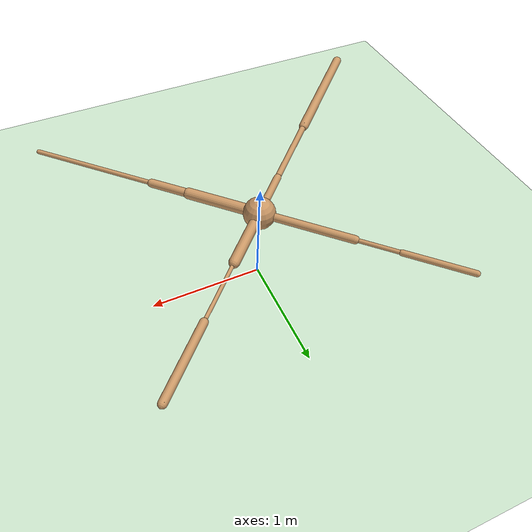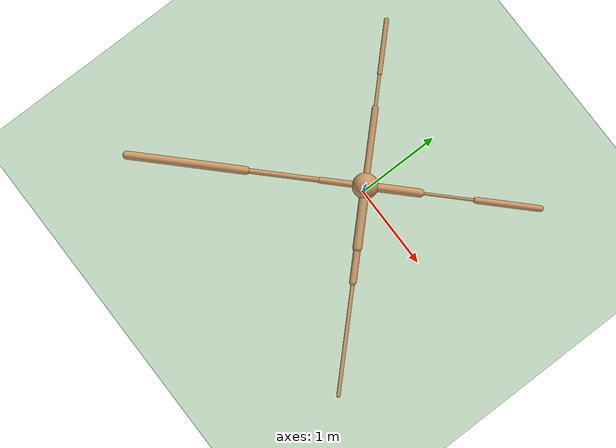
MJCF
<mujoco model="ant">
  <compiler angle="degree" coordinate="local" inertiafromgeom="true" />
  <option integrator="RK4" timestep="0.01" />
  <custom>
    <numeric data="0.0 0.0 0.55 1.0 0.0 0.0 0.0 0.0 1.0 0.0 -1.0 0.0 -1.0 0.0 1.0" name="init_qpos" />
  </custom>
  <default>
    <joint armature="1" damping="1" limited="true" />
    <geom conaffinity="0" condim="3" density="5.0" friction="1 0.5 0.5" margin="0.01" rgba="0.8 0.6 0.4 1" />
  </default>
  <asset>
    <texture builtin="gradient" height="100" rgb1="1 1 1" rgb2="0 0 0" type="skybox" width="100" />
    <texture builtin="flat" height="1278" mark="cross" markrgb="1 1 1" name="texgeom" random="0.01" rgb1="0.8 0.6 0.4" rgb2="0.8 0.6 0.4" type="cube" width="127" />
    <texture builtin="checker" height="100" name="texplane" rgb1="0 0 0" rgb2="0.8 0.8 0.8" type="2d" width="100" />
    <material name="MatPlane" reflectance="0.5" shininess="1" specular="1" texrepeat="60 60" texture="texplane" />
    <material name="geom" texture="texgeom" texuniform="true" />
  </asset>
  <worldbody>
    <light cutoff="100" diffuse="1 1 1" dir="-0 0 -1.3" directional="true" exponent="1" pos="0 0 1.3" specular=".1 .1 .1" />
    <geom conaffinity="1" condim="3" material="MatPlane" name="floor" pos="0 0 0" rgba="0.8 0.9 0.8 1" size="40 40 40" type="plane" />
    <body name="torso" pos="0 0 0.75">
      <camera name="track" mode="trackcom" pos="0 -11 5" xyaxes="1 0 0 0 0.5 1" />
      <geom name="torso_geom" pos="0 0 0" size="0.1392466425895691" type="sphere" />
      <joint armature="0" damping="0" limited="false" margin="0.01" name="root" pos="0 0 0" type="free" />
      <body name="front_left_leg" pos="0 0 0">
        <geom fromto="0 0 0 0.40372365713119507 0.40372365713119507 0" name="aux_1_geom" size="0.04571430757641792" type="capsule" />
        <body name="aux_1" pos="0.40372365713119507 0.40372365713119507 0">
          <joint axis="0 0 1" name="hip_1" pos="0.0 0.0 0.0" range="-30 30" type="hinge" />
          <geom fromto="0 0 0 0.41528844833374023 0.41528844833374023 0" name="left_leg_geom" size="0.015671735629439354" type="capsule" />
          <body name="left_leg_geom_aux" pos="0.41528844833374023 0.41528844833374023 0">
            <joint axis="-1 1 0" name="ankle_1" pos="0.0 0.0 0.0" range="30 70" type="hinge" />
            <geom fromto="0 0 0 0.46956467628479004 0.46956467628479004 0" name="left_ankle_geom" size="0.03448114171624184" type="capsule" />
          </body>
        </body>
      </body>
      <body name="front_right_leg" pos="0 0 0">
        <geom fromto="0 0 0 -0.5752936005592346 0.5752936005592346 0" name="aux_2_geom" size="0.03560496121644974" type="capsule" />
        <body name="aux_2" pos="-0.5752936005592346 0.5752936005592346 0">
          <joint axis="0 0 1" name="hip_2" pos="0.0 0.0 0.0" range="-30 30" type="hinge" />
          <geom fromto="0 0 0 -0.2654039263725281 0.2654039263725281 0" name="right_leg_geom" size="0.01838965341448784" type="capsule" />
          <body name="right_leg_geom_aux" pos="-0.2654039263725281 0.2654039263725281 0">
            <joint axis="1 1 0" name="ankle_2" pos="0.0 0.0 0.0" range="-70 -30" type="hinge" />
            <geom fromto="0 0 0 -0.4044218063354492 0.4044218063354492 0" name="right_ankle_geom" size="0.025819428265094757" type="capsule" />
          </body>
        </body>
      </body>
      <body name="back_leg" pos="0 0 0">
        <geom fromto="0 0 0 -0.331643670797348 -0.331643670797348 0" name="aux_3_geom" size="0.03362749516963959" type="capsule" />
        <body name="aux_3" pos="-0.331643670797348 -0.331643670797348 0">
          <joint axis="0 0 1" name="hip_3" pos="0.0 0.0 0.0" range="-30 30" type="hinge" />
          <geom fromto="0 0 0 -0.5522744655609131 -0.5522744655609131 0" name="back_leg_geom" size="0.027373243123292923" type="capsule" />
          <body name="back_leg_geom_aux" pos="-0.5522744655609131 -0.5522744655609131 0">
            <joint axis="-1 1 0" name="ankle_3" pos="0.0 0.0 0.0" range="-70 -30" type="hinge" />
            <geom fromto="0 0 0 -0.8795136213302612 -0.8795136213302612 0" name="third_ankle_geom" size="0.04444388672709465" type="capsule" />
          </body>
        </body>
      </body>
      <body name="right_back_leg" pos="0 0 0">
        <geom fromto="0 0 0 0.45680639147758484 -0.45680639147758484 0" name="aux_4_geom" size="0.04910239949822426" type="capsule" />
        <body name="aux_4" pos="0.45680639147758484 -0.45680639147758484 0">
          <joint axis="0 0 1" name="hip_4" pos="0.0 0.0 0.0" range="-30 30" type="hinge" />
          <geom fromto="0 0 0 0.2513023614883423 -0.2513023614883423 0" name="rightback_leg_geom" size="0.037791285663843155" type="capsule" />
          <body name="rightback_leg_geom_aux" pos="0.2513023614883423 -0.2513023614883423 0">
            <joint axis="1 1 0" name="ankle_4" pos="0.0 0.0 0.0" range="30 70" type="hinge" />
            <geom fromto="0 0 0 0.8213340640068054 -0.8213340640068054 0" name="fourth_ankle_geom" size="0.02038251794874668" type="capsule" />
          </body>
        </body>
      </body>
    </body>
  </worldbody>
  <actuator>
    <motor ctrllimited="true" ctrlrange="-1.0 1.0" joint="hip_4" gear="150" />
    <motor ctrllimited="true" ctrlrange="-1.0 1.0" joint="ankle_4" gear="150" />
    <motor ctrllimited="true" ctrlrange="-1.0 1.0" joint="hip_1" gear="150" />
    <motor ctrllimited="true" ctrlrange="-1.0 1.0" joint="ankle_1" gear="150" />
    <motor ctrllimited="true" ctrlrange="-1.0 1.0" joint="hip_2" gear="150" />
    <motor ctrllimited="true" ctrlrange="-1.0 1.0" joint="ankle_2" gear="150" />
    <motor ctrllimited="true" ctrlrange="-1.0 1.0" joint="hip_3" gear="150" />
    <motor ctrllimited="true" ctrlrange="-1.0 1.0" joint="ankle_3" gear="150" />
  </actuator>
</mujoco>
